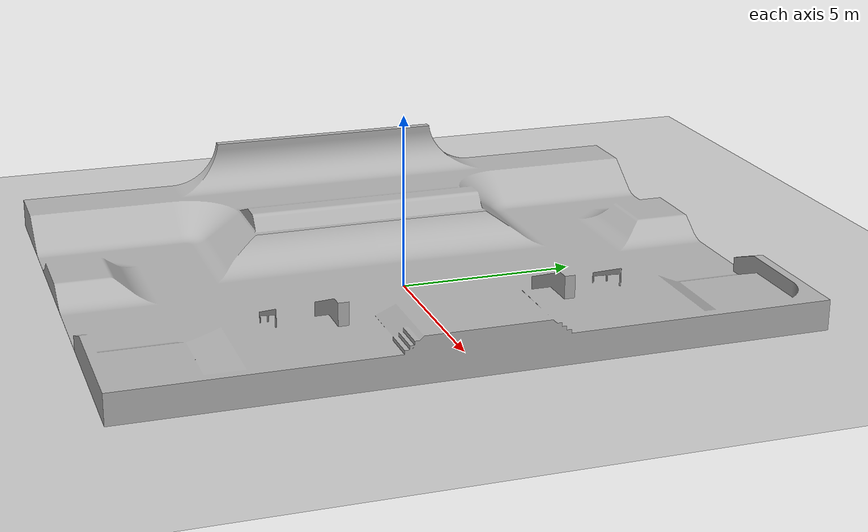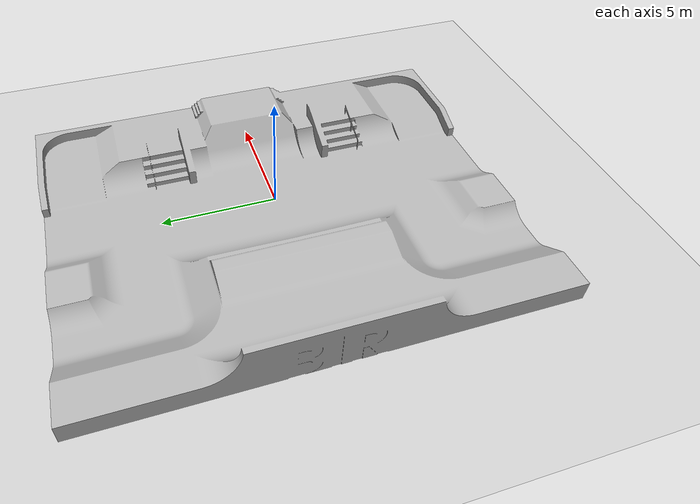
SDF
<?xml version="1.0" ?>
<sdf version="1.4">
  <world name="default">
    <light name='sun' type='directional'>
      <cast_shadows>1</cast_shadows>
      <pose>0 0 10 0 -0 0</pose>
      <diffuse>0.8 0.8 0.8 1</diffuse>
      <specular>0.2 0.2 0.2 1</specular>
      <attenuation>
        <range>1000</range>
        <constant>0.9</constant>
        <linear>0.01</linear>
        <quadratic>0.001</quadratic>
      </attenuation>
      <direction>-0.5 0.1 -0.9</direction>
    </light>

    <model name='ground_plane'>
      <static>1</static>
      <link name='link'>
        <collision name='collision'>
          <geometry>
            <plane>
              <normal>0 0 1</normal>
              <size>100 100</size>
            </plane>
          </geometry>
          <surface>
            <friction>
              <ode>
                <mu>100</mu>
                <mu2>50</mu2>
              </ode>
            </friction>
            <bounce/>
            <contact>
              <ode/>
            </contact>
          </surface>
          <max_contacts>10</max_contacts>
        </collision>
        <visual name='visual'>
          <cast_shadows>0</cast_shadows>
          <geometry>
            <plane>
              <normal>0 0 1</normal>
              <size>100 100</size>
            </plane>
          </geometry>
          <material>
            <script>
              <uri>file://media/materials/scripts/gazebo.material</uri>
              <name>Gazebo/Grey</name>
            </script>
          </material>
        </visual>
        <velocity_decay>
          <linear>0</linear>
          <angular>0</angular>
        </velocity_decay>
        <self_collide>0</self_collide>
        <kinematic>0</kinematic>
        <gravity>1</gravity>
      </link>
    </model>

    <include>
      <uri>model://park</uri>
      <pose>0 0 0.55 0 0 0</pose>
    </include>

    <physics type='ode'>
      <max_step_size>0.01</max_step_size>
      <real_time_factor>1</real_time_factor>
      <real_time_update_rate>100</real_time_update_rate>
      <gravity>0 0 -9.8</gravity>
    </physics>

    <scene>
      <ambient>0.4 0.4 0.4 1</ambient>
      <background>0.7 0.7 0.7 1</background>
      <shadows>1</shadows>
    </scene>

    <gui fullscreen='0'>
      <camera name='user_camera'>
        <pose>16.2337 1.23674 17.6497 0 0.923643 -3.08299</pose>
        <view_controller>orbit</view_controller>
      </camera>
    </gui>
  </world>
</sdf>

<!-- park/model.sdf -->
<sdf version='1.7'>
  <model name='park'>
    <static>true</static>
    <link name='park_link'>
      <velocity_decay>
        <linear>0</linear>
        <angular>0</angular>
      </velocity_decay>

      <self_collide>0</self_collide>
      <kinematic>0</kinematic>
      <gravity>1</gravity>
      <enable_wind>0</enable_wind>

      <inertial>
        <mass>1067378.53101861</mass>
        <inertia>
          <ixx>26067117.17572724</ixx>
          <ixy>-1494.89502312</ixy>
          <ixz>180787.25167944</ixz>
          <iyy>33004921.99612056</iyy>
          <iyz>78.27570635</iyz>
          <izz>58831850.58800142</izz>
        </inertia>
      </inertial>

      <visual name='park_visual'>
        <geometry>
          <mesh>
            <uri>file://park/meshes/bir_park.dae</uri>
          </mesh>
        </geometry>

        <material>
          <shader type='pixel'/>
        </material>

        <pose>0 0 0 0 -0 0</pose>
        <transparency>0</transparency>
        <cast_shadows>1</cast_shadows>
      </visual>

      <collision name='park_collision'>
        <geometry>
          <mesh>
            <uri>file://park/meshes/bir_park.dae</uri>
          </mesh>
        </geometry>
      </collision>

    </link>

    <allow_auto_disable>1</allow_auto_disable>
  </model>
</sdf>
